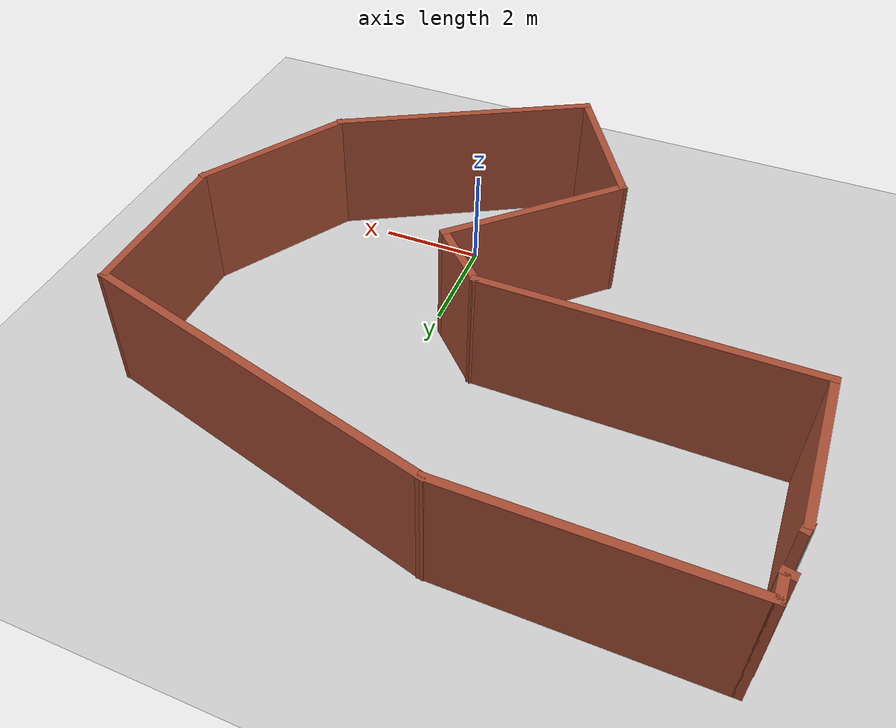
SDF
<sdf version="1.7">
 <world name="default">
  <light name="sun" type="directional">
   <pose>0 0 10 0 -0 0</pose>
   <diffuse>0.8 0.8 0.8 1</diffuse>
   <specular>0.2 0.2 0.2 1</specular>
   <attenuation>
    <range>1000</range>
    <constant>0.9</constant>
    <linear>0.01</linear>
    <quadratic>0.001</quadratic>
   </attenuation>
   <direction>-0.5 0.1 -0.9</direction>
   <spot><inner_angle>0</inner_angle><outer_angle>0</outer_angle><falloff>0</falloff></spot>
  </light>
  <model name="ground_plane">
   <static>1</static>
   <link name="link">
    <collision name="collision">
     <geometry><plane><normal>0 0 1</normal><size>100 100</size></plane></geometry>
     <surface>
      <contact><collide_bitmask>65535</collide_bitmask></contact>
      <friction><ode><mu>100</mu><mu2>50</mu2></ode></friction>
     </surface>
    </collision>
    <visual name="visual">
     <cast_shadows>0</cast_shadows>
     <geometry><plane><normal>0 0 1</normal><size>100 100</size></plane></geometry>
     <material>
      <script><uri>file://media/materials/scripts/gazebo.material</uri><name>Gazebo/Grey</name></script>
     </material>
    </visual>
   </link>
  </model>
  <gravity>0 0 -9.8</gravity>
  <magnetic_field>6e-06 2.3e-05 -4.2e-05</magnetic_field>
  <atmosphere type="adiabatic"/>
  <physics type="ode">
   <max_step_size>0.001</max_step_size>
   <real_time_factor>1</real_time_factor>
   <real_time_update_rate>1000</real_time_update_rate>
  </physics>
  <scene><ambient>0.4 0.4 0.4 1</ambient><background>0.7 0.7 0.7 1</background><shadows>1</shadows></scene>
  <spherical_coordinates>
   <surface_model>EARTH_WGS84</surface_model>
   <latitude_deg>0</latitude_deg>
   <longitude_deg>0</longitude_deg>
   <elevation>0</elevation>
   <heading_deg>0</heading_deg>
  </spherical_coordinates>
  <model name="c-shaped-room">
   <pose>-1.22776 2.48123 0 0 -0 0</pose>
   <link name="Wall_0">
    <collision name="Wall_0_Collision">
     <geometry><box><size>0.5 0.15 2.5</size></box></geometry>
     <pose>0 0 1.25 0 -0 0</pose>
    </collision>
    <visual name="Wall_0_Visual">
     <pose>0 0 1.25 0 -0 0</pose>
     <geometry><box><size>0.5 0.15 2.5</size></box></geometry>
     <material>
      <script><uri>file://media/materials/scripts/gazebo.material</uri><name>Gazebo/Bricks</name></script>
      <ambient>1 1 1 1</ambient>
     </material>
     <meta><layer>0</layer></meta>
    </visual>
    <pose>-5.64652 4.83002 0 0 -0 1.5708</pose>
   </link>
   <link name="Wall_1">
    <collision name="Wall_1_Collision">
     <geometry><box><size>5 0.15 2.5</size></box></geometry>
     <pose>0 0 1.25 0 -0 0</pose>
    </collision>
    <visual name="Wall_1_Visual">
     <pose>0 0 1.25 0 -0 0</pose>
     <geometry><box><size>5 0.15 2.5</size></box></geometry>
     <material>
      <script><uri>file://media/materials/scripts/gazebo.material</uri><name>Gazebo/Bricks</name></script>
      <ambient>1 1 1 1</ambient>
     </material>
     <meta><layer>0</layer></meta>
    </visual>
    <pose>-3.22152 5.00502 0 0 -0 0</pose>
   </link>
   <link name="Wall_10">
    <collision name="Wall_10_Collision">
     <geometry><box><size>3 0.15 2.5</size></box></geometry>
     <pose>0 0 1.25 0 -0 0</pose>
    </collision>
    <visual name="Wall_10_Visual">
     <pose>0 0 1.25 0 -0 0</pose>
     <geometry><box><size>3 0.15 2.5</size></box></geometry>
     <material>
      <script><uri>file://media/materials/scripts/gazebo.material</uri><name>Gazebo/Bricks</name></script>
      <ambient>1 1 1 1</ambient>
     </material>
     <meta><layer>0</layer></meta>
    </visual>
    <pose>-5.83067 2.29078 0 0 -0 1.5708</pose>
   </link>
   <link name="Wall_11">
    <collision name="Wall_11_Collision">
     <geometry><box><size>0.15 0.15 2.5</size></box></geometry>
     <pose>0 0 1.25 0 -0 0</pose>
    </collision>
    <visual name="Wall_11_Visual">
     <pose>0 0 1.25 0 -0 0</pose>
     <geometry><box><size>0.15 0.15 2.5</size></box></geometry>
     <material>
      <script><uri>file://media/materials/scripts/gazebo.material</uri><name>Gazebo/Grey</name></script>
      <ambient>1 1 1 1</ambient>
     </material>
     <meta><layer>0</layer></meta>
    </visual>
    <pose>-5.83067 3.71578 0 0 -0 0</pose>
   </link>
   <link name="Wall_12">
    <collision name="Wall_12_Collision">
     <geometry><box><size>0.25 0.15 2.5</size></box></geometry>
     <pose>0 0 1.25 0 -0 0</pose>
    </collision>
    <visual name="Wall_12_Visual">
     <pose>0 0 1.25 0 -0 0</pose>
     <geometry><box><size>0.25 0.15 2.5</size></box></geometry>
     <material>
      <script><uri>file://media/materials/scripts/gazebo.material</uri><name>Gazebo/Bricks</name></script>
      <ambient>1 1 1 1</ambient>
     </material>
     <meta><layer>0</layer></meta>
    </visual>
    <pose>-5.81773 3.76408 0 0 -0 1.309</pose>
   </link>
   <link name="Wall_2">
    <collision name="Wall_2_Collision">
     <geometry><box><size>7 0.15 2.5</size></box></geometry>
     <pose>0 0 1.25 0 -0 0</pose>
    </collision>
    <visual name="Wall_2_Visual">
     <pose>0 0 1.25 0 -0 0</pose>
     <geometry><box><size>7 0.15 2.5</size></box></geometry>
     <material>
      <script><uri>file://media/materials/scripts/gazebo.material</uri><name>Gazebo/Bricks</name></script>
      <ambient>1 1 1 1</ambient>
     </material>
     <meta><layer>0</layer></meta>
    </visual>
    <pose>2.51178 4.11857 0 0 -0 -0.261799</pose>
   </link>
   <link name="Wall_3">
    <collision name="Wall_3_Collision">
     <geometry><box><size>3.25 0.15 2.5</size></box></geometry>
     <pose>0 0 1.25 0 -0 0</pose>
    </collision>
    <visual name="Wall_3_Visual">
     <pose>0 0 1.25 0 -0 0</pose>
     <geometry><box><size>3.25 0.15 2.5</size></box></geometry>
     <material>
      <script><uri>file://media/materials/scripts/gazebo.material</uri><name>Gazebo/Bricks</name></script>
      <ambient>1 1 1 1</ambient>
     </material>
     <meta><layer>0</layer></meta>
    </visual>
    <pose>5.82007 1.68211 0 0 -0 -1.5708</pose>
   </link>
   <link name="Wall_4">
    <collision name="Wall_4_Collision">
     <geometry><box><size>3.25 0.15 2.5</size></box></geometry>
     <pose>0 0 1.25 0 -0 0</pose>
    </collision>
    <visual name="Wall_4_Visual">
     <pose>0 0 1.25 0 -0 0</pose>
     <geometry><box><size>3.25 0.15 2.5</size></box></geometry>
     <material>
      <script><uri>file://media/materials/scripts/gazebo.material</uri><name>Gazebo/Bricks</name></script>
      <ambient>1 1 1 1</ambient>
     </material>
     <meta><layer>0</layer></meta>
    </visual>
    <pose>5.04507 -1.21023 0 0 -0 -2.0944</pose>
   </link>
   <link name="Wall_5">
    <collision name="Wall_5_Collision">
     <geometry><box><size>5.25 0.15 2.5</size></box></geometry>
     <pose>0 0 1.25 0 -0 0</pose>
    </collision>
    <visual name="Wall_5_Visual">
     <pose>0 0 1.25 0 -0 0</pose>
     <geometry><box><size>5.25 0.15 2.5</size></box></geometry>
     <material>
      <script><uri>file://media/materials/scripts/gazebo.material</uri><name>Gazebo/Bricks</name></script>
      <ambient>1 1 1 1</ambient>
     </material>
     <meta><layer>0</layer></meta>
    </visual>
    <pose>2.06171 -3.82757 0 0 -0 -2.61799</pose>
   </link>
   <link name="Wall_6">
    <collision name="Wall_6_Collision">
     <geometry><box><size>3 0.15 2.5</size></box></geometry>
     <pose>0 0 1.25 0 -0 0</pose>
    </collision>
    <visual name="Wall_6_Visual">
     <pose>0 0 1.25 0 -0 0</pose>
     <geometry><box><size>3 0.15 2.5</size></box></geometry>
     <material>
      <script><uri>file://media/materials/scripts/gazebo.material</uri><name>Gazebo/Bricks</name></script>
      <ambient>1 1 1 1</ambient>
     </material>
     <meta><layer>0</layer></meta>
    </visual>
    <pose>-0.859158 -3.86848 0 0 -0 2.0944</pose>
   </link>
   <link name="Wall_7">
    <collision name="Wall_7_Collision">
     <geometry><box><size>3.75 0.15 2.5</size></box></geometry>
     <pose>0 0 1.25 0 -0 0</pose>
    </collision>
    <visual name="Wall_7_Visual">
     <pose>0 0 1.25 0 -0 0</pose>
     <geometry><box><size>3.75 0.15 2.5</size></box></geometry>
     <material>
      <script><uri>file://media/materials/scripts/gazebo.material</uri><name>Gazebo/Bricks</name></script>
      <ambient>1 1 1 1</ambient>
     </material>
     <meta><layer>0</layer></meta>
    </visual>
    <pose>-0.298866 -1.3616 0 0 -0 0.785398</pose>
   </link>
   <link name="Wall_8">
    <collision name="Wall_8_Collision">
     <geometry><box><size>1.5 0.15 2.5</size></box></geometry>
     <pose>0 0 1.25 0 -0 0</pose>
    </collision>
    <visual name="Wall_8_Visual">
     <pose>0 0 1.25 0 -0 0</pose>
     <geometry><box><size>1.5 0.15 2.5</size></box></geometry>
     <material>
      <script><uri>file://media/materials/scripts/gazebo.material</uri><name>Gazebo/Bricks</name></script>
      <ambient>1 1 1 1</ambient>
     </material>
     <meta><layer>0</layer></meta>
    </visual>
    <pose>0.49663 0.388485 0 0 -0 2.35619</pose>
   </link>
   <link name="Wall_9">
    <collision name="Wall_9_Collision">
     <geometry><box><size>6 0.15 2.5</size></box></geometry>
     <pose>0 0 1.25 0 -0 0</pose>
    </collision>
    <visual name="Wall_9_Visual">
     <pose>0 0 1.25 0 -0 0</pose>
     <geometry><box><size>6 0.15 2.5</size></box></geometry>
     <material>
      <script><uri>file://media/materials/scripts/gazebo.material</uri><name>Gazebo/Bricks</name></script>
      <ambient>1 1 1 1</ambient>
     </material>
     <meta><layer>0</layer></meta>
    </visual>
    <pose>-2.90567 0.865782 0 0 -0 3.14159</pose>
   </link>
   <static>1</static>
  </model>
  <model name="door-model">
   <link name="door">
    <inertial>
     <mass>20</mass>
     <inertia>
      <ixx>4.53808</ixx>
      <ixy>0</ixy>
      <ixz>0</ixz>
      <iyy>4.54003</iyy>
      <iyz>0</iyz>
      <izz>0.0512722</izz>
     </inertia>
    </inertial>
    <gravity>0</gravity>
    <visual name="visual">
     <geometry><mesh><uri>model://door-model/./Door.dae</uri><scale>0.001 0.001 0.001</scale></mesh></geometry>
    </visual>
    <collision name="collision">
     <geometry><mesh><uri>model://door-model/./Door.dae</uri><scale>0.001 0.001 0.001</scale></mesh></geometry>
     <surface>
      <friction>
       <ode><mu>1</mu><mu2>1</mu2><fdir1>0 0 0</fdir1><slip1>0</slip1><slip2>0</slip2></ode>
       <torsional>
        <coefficient>1</coefficient>
        <patch_radius>0</patch_radius>
        <surface_radius>0</surface_radius>
        <use_patch_radius>1</use_patch_radius>
        <ode><slip>0</slip></ode>
       </torsional>
      </friction>
      <bounce><restitution_coefficient>0</restitution_coefficient><threshold>1e+06</threshold></bounce>
      <contact>
       <collide_without_contact>0</collide_without_contact>
       <collide_without_contact_bitmask>1</collide_without_contact_bitmask>
       <collide_bitmask>1</collide_bitmask>
       <ode>
        <soft_cfm>0</soft_cfm>
        <soft_erp>0.2</soft_erp>
        <kp>1e+13</kp>
        <kd>1</kd>
        <max_vel>0.01</max_vel>
        <min_depth>0</min_depth>
       </ode>
       <bullet>
        <split_impulse>1</split_impulse>
        <split_impulse_penetration_threshold>-0.01</split_impulse_penetration_threshold>
        <soft_cfm>0</soft_cfm>
        <soft_erp>0.2</soft_erp>
        <kp>1e+13</kp>
        <kd>1</kd>
       </bullet>
      </contact>
     </surface>
    </collision>
   </link>
   <link name="pole">
    <inertial>
     <mass>100</mass>
     <inertia>
      <ixx>0.001</ixx>
      <ixy>0.001</ixy>
      <ixz>0.001</ixz>
      <iyy>0.001</iyy>
      <iyz>0.001</iyz>
      <izz>0.001</izz>
     </inertia>
    </inertial>
    <pose>-0.02632 0 0.308096 0 -0 0</pose>
    <gravity>0</gravity>
    <kinematic>1</kinematic>
    <visual name="visual">
     <geometry><box><size>0.048276 0.0462 0.625074</size></box></geometry>
     <material>
      <lighting>1</lighting>
      <script><uri>file://media/materials/scripts/gazebo.material</uri><name>Gazebo/White</name></script>
      <ambient>1 1 1 1</ambient>
     </material>
    </visual>
    <collision name="collision">
     <geometry><box><size>0.048 0.046201 0.625074</size></box></geometry>
     <surface>
      <friction>
       <ode><mu>1</mu><mu2>1</mu2><fdir1>0 0 0</fdir1><slip1>0</slip1><slip2>0</slip2></ode>
       <torsional>
        <coefficient>1</coefficient>
        <patch_radius>0</patch_radius>
        <surface_radius>0</surface_radius>
        <use_patch_radius>1</use_patch_radius>
        <ode><slip>0</slip></ode>
       </torsional>
      </friction>
      <bounce><restitution_coefficient>0</restitution_coefficient><threshold>1e+06</threshold></bounce>
      <contact>
       <collide_without_contact>0</collide_without_contact>
       <collide_without_contact_bitmask>1</collide_without_contact_bitmask>
       <collide_bitmask>1</collide_bitmask>
       <ode>
        <soft_cfm>0</soft_cfm>
        <soft_erp>0.2</soft_erp>
        <kp>1e+13</kp>
        <kd>1</kd>
        <max_vel>0.01</max_vel>
        <min_depth>0</min_depth>
       </ode>
       <bullet>
        <split_impulse>1</split_impulse>
        <split_impulse_penetration_threshold>-0.01</split_impulse_penetration_threshold>
        <soft_cfm>0</soft_cfm>
        <soft_erp>0.2</soft_erp>
        <kp>1e+13</kp>
        <kd>1</kd>
       </bullet>
      </contact>
     </surface>
    </collision>
   </link>
   <joint name="hinge" type="revolute">
    <parent>pole</parent>
    <child>door</child>
    <pose>0 0 0.3 0 -0 0</pose>
    <axis>
     <xyz>0 0 1</xyz>
     <limit><lower>-1.74533</lower><upper>1.74533</upper><effort>3900</effort><velocity>0.62</velocity></limit>
     <dynamics>
      <spring_reference>0</spring_reference>
      <spring_stiffness>0</spring_stiffness>
      <damping>0.1</damping>
      <friction>0.1</friction>
     </dynamics>
    </axis>
    <physics>
     <ode><limit><cfm>0</cfm><erp>0.2</erp></limit><suspension><cfm>0</cfm><erp>0.2</erp></suspension></ode>
    </physics>
   </joint>
   <static>0</static>
   <pose>-6.95306 6.4042 0 0 -0 1.37022</pose>
  </model>
  <model name="gap-filler">
   <pose>-4.97564 9.81993 0 0 0 -0.191202</pose>
   <link name="Wall_4">
    <collision name="Wall_4_Collision">
     <geometry><box><size>0.25 0.15 2.5</size></box></geometry>
     <pose>0 0 1.25 0 -0 0</pose>
    </collision>
    <visual name="Wall_4_Visual">
     <pose>0 0 1.25 0 -0 0</pose>
     <geometry><box><size>0.25 0.15 2.5</size></box></geometry>
     <material>
      <script><uri>file://media/materials/scripts/gazebo.material</uri><name>Gazebo/Bricks</name></script>
      <ambient>1 1 1 1</ambient>
     </material>
     <meta><layer>0</layer></meta>
    </visual>
    <pose>-1.38938 -3.0906 0 0 -0 3.14159</pose>
   </link>
   <static>1</static>
  </model>
 </world>
</sdf>
